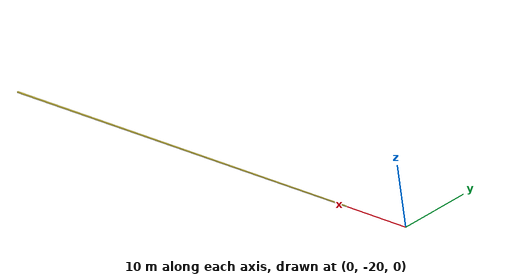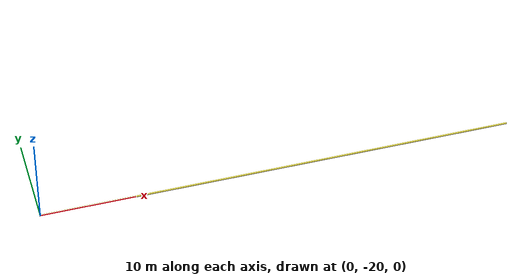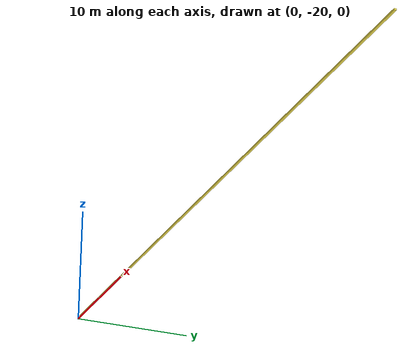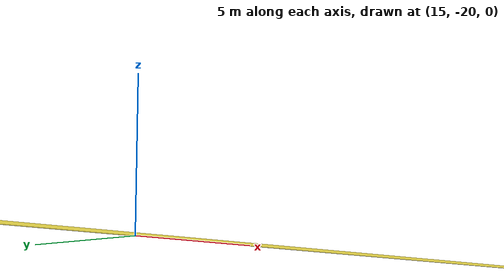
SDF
<?xml version='1.0'?>
<sdf version='1.7'>
  <model name='YellowLane'>
    <pose>25 -10.0375 0 0 -0 0</pose>
    <link name='Wall_0'>
      <collision name='Wall_0_Collision'>
        <geometry>
          <box>
            <size>50.15 0.15 0.1</size>
          </box>
        </geometry>
        <pose>0 0 0.05 0 -0 0</pose>
      </collision>
      <visual name='Wall_0_Visual'>
        <pose>0 0 0.05 0 -0 0</pose>
        <geometry>
          <box>
            <size>50.15 0.15 0.1</size>
          </box>
        </geometry>
        <material>
          <script>
            <uri>file://media/materials/scripts/gazebo.material</uri>
            <name>Gazebo/Grey</name>
          </script>
          <ambient>0.988235 0.913725 0.309804 1</ambient>
        </material>
        <meta>
          <layer>0</layer>
        </meta>
      </visual>
      <pose>0 -9.9625 0 0 -0 0</pose>
    </link>
    <static>1</static>
  </model>
</sdf>
